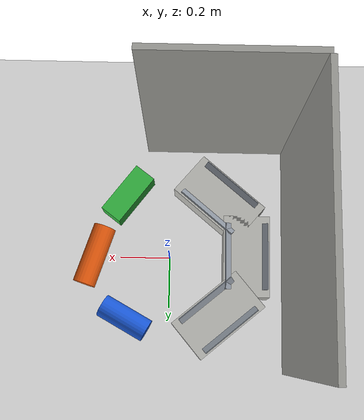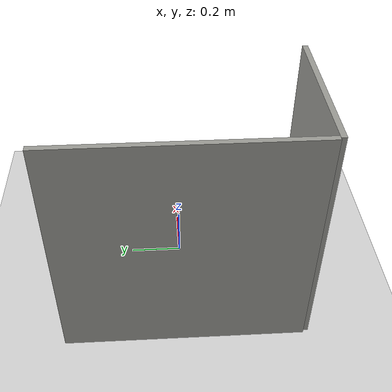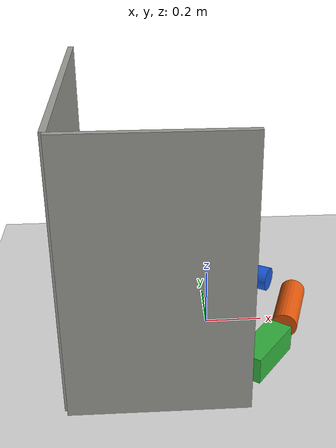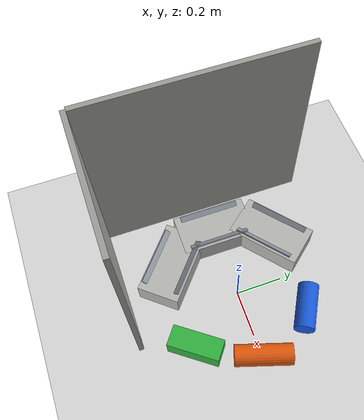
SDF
<?xml version="1.0"?>
<sdf version="1.9">
  <world name="pick_place">

    <physics name="step" type="ignored">
      <max_step_size>0.001</max_step_size>
      <real_time_factor>1.0</real_time_factor>
    </physics>
    <plugin filename="gz-sim-physics-system" name="gz::sim::systems::Physics"/>
    <plugin filename="gz-sim-user-commands-system" name="gz::sim::systems::UserCommands"/>
    <plugin filename="gz-sim-scene-broadcaster-system" name="gz::sim::systems::SceneBroadcaster"/>
    <plugin filename="gz-sim-imu-system"
            name="gz::sim::systems::Imu"/>
    <plugin filename="gz-sim-forcetorque-system"
            name="gz::sim::systems::ForceTorque"/>
    <plugin filename="gz-sim-contact-system"
            name="gz::sim::systems::Contact"/>
    <plugin filename="gz-sim-sensors-system" name="gz::sim::systems::Sensors">
      <render_engine>ogre2</render_engine>
    </plugin>

    <light type="directional" name="sun">
      <cast_shadows>true</cast_shadows>
      <pose>0 0 10 0 0 0</pose>
      <diffuse>0.9 0.9 0.9 1</diffuse>
      <specular>0.2 0.2 0.2 1</specular>
      <direction>-0.4 0.2 -0.9</direction>
    </light>

    <model name="ground_plane">
      <static>true</static>
      <link name="link">
        <collision name="col">
          <geometry><plane><normal>0 0 1</normal><size>10 10</size></plane></geometry>
          <surface><friction><ode><mu>1.0</mu><mu2>1.0</mu2></ode></friction></surface>
        </collision>
        <visual name="vis">
          <geometry><plane><normal>0 0 1</normal><size>10 10</size></plane></geometry>
          <material><ambient>0.85 0.85 0.85 1</ambient><diffuse>0.85 0.85 0.85 1</diffuse></material>
        </visual>
      </link>
    </model>

    <!-- shelf: slab centred behind the robot, spanning the three slots -->
    <include>
      <uri>model://shelf</uri>
      <name>shelf</name>
      <pose>0 0 0 0 0 0</pose>
    </include>

    <include>
      <uri>model://bottle</uri>
      <name>bottle</name>
      <pose>0.300 0.000 0.045 1.5708 0 2.8274</pose>
    </include>
    <include>
      <uri>model://can</uri>
      <name>can</name>
      <pose>0.172 0.246 0.045 1.5708 0 4.2062</pose>
    </include>
    <include>
      <uri>model://box</uri>
      <name>box</name>
      <pose>0.172 -0.246 0.045 1.5708 0 2.4958</pose>
    </include>

  </world>
</sdf>

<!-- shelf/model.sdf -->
<sdf version="1.9">
  <model name="shelf">
    <static>true</static>
    <link name="link">
      <!-- ============ slot 1: bottle, azimuth 130 deg ============ -->
      <collision name="ped1"><pose>-0.1928 0.2298 0.0500 0 0 2.2689</pose>
        <geometry><box><size>0.18 0.32 0.10</size></box></geometry>
        <surface><friction><ode><mu>1.0</mu><mu2>1.0</mu2></ode></friction></surface></collision>
      <visual name="ped1v"><pose>-0.1928 0.2298 0.0500 0 0 2.2689</pose>
        <geometry><box><size>0.18 0.32 0.10</size></box></geometry>
        <material><ambient>0.72 0.72 0.70 1</ambient><diffuse>0.72 0.72 0.70 1</diffuse></material></visual>
      <!-- chamfered barriers, outer then inner. Low friction so the object slides in. -->
      <collision name="ramp1o"><pose>-0.2391 0.2849 0.1047 0 -0.6109 2.2689</pose>
        <geometry><box><size>0.025 0.260 0.006</size></box></geometry>
        <surface><friction><ode><mu>0.30</mu><mu2>0.30</mu2></ode></friction></surface></collision>
      <visual name="ramp1ov"><pose>-0.2391 0.2849 0.1047 0 -0.6109 2.2689</pose>
        <geometry><box><size>0.025 0.260 0.006</size></box></geometry>
        <material><ambient>0.55 0.58 0.62 1</ambient><diffuse>0.55 0.58 0.62 1</diffuse></material></visual>
      <collision name="ramp1i"><pose>-0.1466 0.1747 0.1047 0 0.6109 2.2689</pose>
        <geometry><box><size>0.025 0.260 0.006</size></box></geometry>
        <surface><friction><ode><mu>0.30</mu><mu2>0.30</mu2></ode></friction></surface></collision>
      <visual name="ramp1iv"><pose>-0.1466 0.1747 0.1047 0 0.6109 2.2689</pose>
        <geometry><box><size>0.025 0.260 0.006</size></box></geometry>
        <material><ambient>0.55 0.58 0.62 1</ambient><diffuse>0.55 0.58 0.62 1</diffuse></material></visual>

      <!-- ============ slot 2: can, azimuth 180 deg ============ -->
      <collision name="ped2"><pose>-0.3000 0.0000 0.0500 0 0 3.1416</pose>
        <geometry><box><size>0.18 0.32 0.10</size></box></geometry>
        <surface><friction><ode><mu>1.0</mu><mu2>1.0</mu2></ode></friction></surface></collision>
      <visual name="ped2v"><pose>-0.3000 0.0000 0.0500 0 0 3.1416</pose>
        <geometry><box><size>0.18 0.32 0.10</size></box></geometry>
        <material><ambient>0.72 0.72 0.70 1</ambient><diffuse>0.72 0.72 0.70 1</diffuse></material></visual>
      <collision name="ramp2o"><pose>-0.3720 0.0000 0.1047 0 -0.6109 3.1416</pose>
        <geometry><box><size>0.025 0.260 0.006</size></box></geometry>
        <surface><friction><ode><mu>0.30</mu><mu2>0.30</mu2></ode></friction></surface></collision>
      <visual name="ramp2ov"><pose>-0.3720 0.0000 0.1047 0 -0.6109 3.1416</pose>
        <geometry><box><size>0.025 0.260 0.006</size></box></geometry>
        <material><ambient>0.55 0.58 0.62 1</ambient><diffuse>0.55 0.58 0.62 1</diffuse></material></visual>
      <collision name="ramp2i"><pose>-0.2280 0.0000 0.1047 0 0.6109 3.1416</pose>
        <geometry><box><size>0.025 0.260 0.006</size></box></geometry>
        <surface><friction><ode><mu>0.30</mu><mu2>0.30</mu2></ode></friction></surface></collision>
      <visual name="ramp2iv"><pose>-0.2280 0.0000 0.1047 0 0.6109 3.1416</pose>
        <geometry><box><size>0.025 0.260 0.006</size></box></geometry>
        <material><ambient>0.55 0.58 0.62 1</ambient><diffuse>0.55 0.58 0.62 1</diffuse></material></visual>

      <!-- ============ slot 3: box, azimuth 230 deg ============ -->
      <collision name="ped3"><pose>-0.1928 -0.2298 0.0500 0 0 4.0143</pose>
        <geometry><box><size>0.18 0.32 0.10</size></box></geometry>
        <surface><friction><ode><mu>1.0</mu><mu2>1.0</mu2></ode></friction></surface></collision>
      <visual name="ped3v"><pose>-0.1928 -0.2298 0.0500 0 0 4.0143</pose>
        <geometry><box><size>0.18 0.32 0.10</size></box></geometry>
        <material><ambient>0.72 0.72 0.70 1</ambient><diffuse>0.72 0.72 0.70 1</diffuse></material></visual>
      <collision name="ramp3o"><pose>-0.2391 -0.2849 0.1047 0 -0.6109 4.0143</pose>
        <geometry><box><size>0.025 0.260 0.006</size></box></geometry>
        <surface><friction><ode><mu>0.30</mu><mu2>0.30</mu2></ode></friction></surface></collision>
      <visual name="ramp3ov"><pose>-0.2391 -0.2849 0.1047 0 -0.6109 4.0143</pose>
        <geometry><box><size>0.025 0.260 0.006</size></box></geometry>
        <material><ambient>0.55 0.58 0.62 1</ambient><diffuse>0.55 0.58 0.62 1</diffuse></material></visual>
      <collision name="ramp3i"><pose>-0.1466 -0.1747 0.1047 0 0.6109 4.0143</pose>
        <geometry><box><size>0.025 0.260 0.006</size></box></geometry>
        <surface><friction><ode><mu>0.30</mu><mu2>0.30</mu2></ode></friction></surface></collision>
      <visual name="ramp3iv"><pose>-0.1466 -0.1747 0.1047 0 0.6109 4.0143</pose>
        <geometry><box><size>0.025 0.260 0.006</size></box></geometry>
        <material><ambient>0.55 0.58 0.62 1</ambient><diffuse>0.55 0.58 0.62 1</diffuse></material></visual>

      <!-- ============ walls: the LiDAR pose reference ============ -->
          <collision name="backwall"><pose>-0.46 0 0.45 0 0 0</pose>
        <geometry><box><size>0.02 0.90 0.90</size></box></geometry></collision>
      <visual name="backwallv"><pose>-0.46 0 0.45 0 0 0</pose>
        <geometry><box><size>0.02 0.90 0.90</size></box></geometry>
        <material><ambient>0.62 0.62 0.60 1</ambient><diffuse>0.62 0.62 0.60 1</diffuse></material></visual>
      <collision name="sidewall"><pose>-0.18 -0.46 0.45 0 0 0</pose>
        <geometry><box><size>0.56 0.02 0.90</size></box></geometry></collision>
      <visual name="sidewallv"><pose>-0.18 -0.46 0.45 0 0 0</pose>
        <geometry><box><size>0.56 0.02 0.90</size></box></geometry>
        <material><ambient>0.62 0.62 0.60 1</ambient><diffuse>0.62 0.62 0.60 1</diffuse></material></visual>
    </link>
  </model>
</sdf>

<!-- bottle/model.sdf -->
<sdf version="1.9">
  <model name="bottle">
    <link name="link">
      <inertial><mass>0.45</mass>
        <inertia><ixx>2.387812e-03</ixx><iyy>2.387812e-03</iyy><izz>4.556250e-04</izz>
          <ixy>0</ixy><ixz>0</ixz><iyz>0</iyz></inertia>
      </inertial>
      <collision name="col">
        <geometry><cylinder><radius>0.045</radius><length>0.24</length></cylinder></geometry>
        <surface>
          <friction><ode><mu>1.5</mu><mu2>1.5</mu2></ode></friction>
          <contact><ode><soft_cfm>0.001</soft_cfm><soft_erp>0.2</soft_erp>
            <kp>1e6</kp><kd>100</kd></ode></contact>
        </surface>
      </collision>
      <visual name="vis">
        <geometry><cylinder><radius>0.045</radius><length>0.24</length></cylinder></geometry>
        <material><ambient>0.90 0.35 0.05 1</ambient><diffuse>0.90 0.35 0.05 1</diffuse>
          <specular>0.3 0.3 0.3 1</specular></material>
      </visual>
    </link>
    <plugin filename="gz-sim-pose-publisher-system"
            name="gz::sim::systems::PosePublisher">
      <publish_link_pose>false</publish_link_pose>
      <publish_visual_pose>false</publish_visual_pose>
      <publish_collision_pose>false</publish_collision_pose>
      <publish_sensor_pose>false</publish_sensor_pose>
      <publish_nested_model_pose>false</publish_nested_model_pose>
      <!-- the model pose, in the world frame - exactly what verification needs -->
      <publish_model_pose>true</publish_model_pose>
      <!-- one plain Pose, not a Pose_V, so the bridge conversion is the simplest one -->
      <use_pose_vector_msg>false</use_pose_vector_msg>
      <static_publisher>false</static_publisher>
      <update_frequency>20</update_frequency>
    </plugin>
  </model>
</sdf>

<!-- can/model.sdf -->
<sdf version="1.9">
  <model name="can">
    <link name="link">
      <velocity_decay>
      <linear>0.0</linear>
      <angular>2.0</angular>
      </velocity_decay>
      <inertial><mass>0.35</mass>
        <inertia><ixx>1.343854e-03</ixx><iyy>1.343854e-03</iyy><izz>3.543750e-04</izz>
          <ixy>0</ixy><ixz>0</ixz><iyz>0</iyz></inertia>
      </inertial>
      <collision name="col">
        <geometry><cylinder><radius>0.045</radius><length>0.2</length></cylinder></geometry>
        <surface>
          <friction><ode><mu>1.5</mu><mu2>1.5</mu2></ode></friction>
          <contact><ode><soft_cfm>0.001</soft_cfm><soft_erp>0.2</soft_erp>
            <kp>1e6</kp><kd>100</kd></ode></contact>
        </surface>
      </collision>
      <visual name="vis">
        <geometry><cylinder><radius>0.045</radius><length>0.2</length></cylinder></geometry>
        <material><ambient>0.10 0.35 0.85 1</ambient><diffuse>0.10 0.35 0.85 1</diffuse>
          <specular>0.3 0.3 0.3 1</specular></material>
      </visual>
    </link>
    <plugin filename="gz-sim-pose-publisher-system"
            name="gz::sim::systems::PosePublisher">
      <publish_link_pose>false</publish_link_pose>
      <publish_visual_pose>false</publish_visual_pose>
      <publish_collision_pose>false</publish_collision_pose>
      <publish_sensor_pose>false</publish_sensor_pose>
      <publish_nested_model_pose>false</publish_nested_model_pose>
      <!-- the model pose, in the world frame - exactly what verification needs -->
      <publish_model_pose>true</publish_model_pose>
      <!-- one plain Pose, not a Pose_V, so the bridge conversion is the simplest one -->
      <use_pose_vector_msg>false</use_pose_vector_msg>
      <static_publisher>false</static_publisher>
      <update_frequency>20</update_frequency>
    </plugin>
  </model>
</sdf>

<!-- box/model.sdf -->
<sdf version="1.9">
  <model name="box">
    <link name="link">
      <inertial><mass>0.5</mass>
        <inertia><ixx>2.354167e-03</ixx><iyy>2.354167e-03</iyy><izz>6.750000e-04</izz>
          <ixy>0</ixy><ixz>0</ixz><iyz>0</iyz></inertia>
      </inertial>
      <collision name="col">
        <geometry><box><size>0.09 0.09 0.22</size></box></geometry>
        <surface>
          <friction><ode><mu>1.5</mu><mu2>1.5</mu2></ode></friction>
          <contact><ode><soft_cfm>0.001</soft_cfm><soft_erp>0.2</soft_erp>
            <kp>1e6</kp><kd>100</kd></ode></contact>
        </surface>
      </collision>
      <visual name="vis">
        <geometry><box><size>0.09 0.09 0.22</size></box></geometry>
        <material><ambient>0.20 0.70 0.25 1</ambient><diffuse>0.20 0.70 0.25 1</diffuse>
          <specular>0.3 0.3 0.3 1</specular></material>
      </visual>
    </link>
    <plugin filename="gz-sim-pose-publisher-system"
            name="gz::sim::systems::PosePublisher">
      <publish_link_pose>false</publish_link_pose>
      <publish_visual_pose>false</publish_visual_pose>
      <publish_collision_pose>false</publish_collision_pose>
      <publish_sensor_pose>false</publish_sensor_pose>
      <publish_nested_model_pose>false</publish_nested_model_pose>
      <!-- the model pose, in the world frame - exactly what verification needs -->
      <publish_model_pose>true</publish_model_pose>
      <!-- one plain Pose, not a Pose_V, so the bridge conversion is the simplest one -->
      <use_pose_vector_msg>false</use_pose_vector_msg>
      <static_publisher>false</static_publisher>
      <update_frequency>20</update_frequency>
    </plugin>
  </model>
</sdf>
